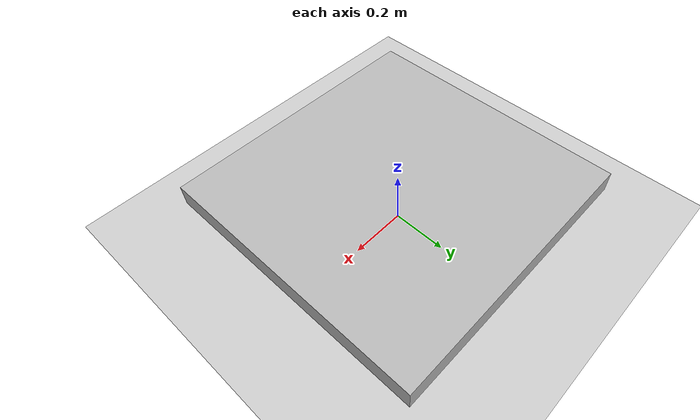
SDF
<?xml version="1.0" ?>
<sdf version="1.4">
  <!-- We use a custom world for the rrbot so that the camera angle is launched correctly -->

  <world name="default">
    <include>
      <uri>model://ground_plane</uri>
    </include>

    <!-- Global light source -->
    <include>
      <uri>model://sun</uri>
    </include>

    <include>
      <uri>model://chess_plane</uri>
      <pose>0 0 0.15 1.57 0 0 </pose>
    </include>

    <!-- Focus camera on tall pendulum -->
    <gui fullscreen='0'>
      <camera name='user_camera'>
        <pose>4.927360 -4.376610 3.740080 0.000000 0.275643 2.356190</pose>
        <view_controller>orbit</view_controller>
      </camera>
    </gui>

  </world>
</sdf>

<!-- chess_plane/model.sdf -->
<sdf version='1.6'>
  <model name="Checkerboard">
      <pose>0 0 0.6 0 0 0</pose>
      <static>true</static>
      <link name="body">
        <visual name="visual">
			<pose>0 0 0 0 0 0</pose>
			  <geometry>
				<mesh><uri>model://chess_plane/meshes/chess_plane.dae</uri></mesh>
			  </geometry>
		</visual>
		  <collision name="collision">
			<pose>0 0 0  0 0 0</pose>
			  <geometry>
				<mesh><uri>model://chess_plane/meshes/chess_plane.stl</uri></mesh>
			  </geometry>
		  </collision>
      </link>
    </model>
</sdf>
